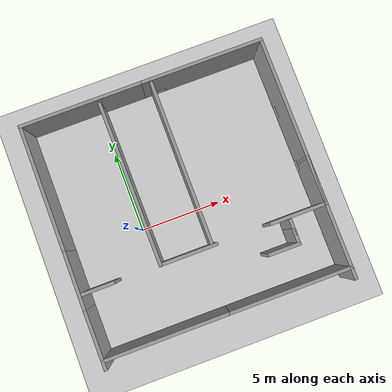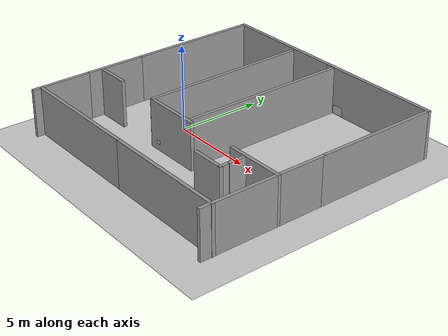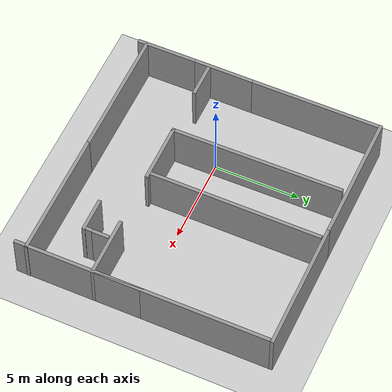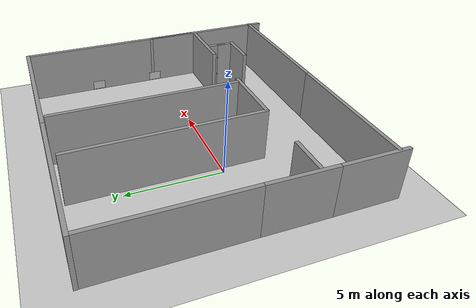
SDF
<sdf version="1.7">
 <world name="default">
  <light name="sun" type="directional">
   <pose>0 0 10 0 -0 0</pose>
   <diffuse>0.8 0.8 0.8 1</diffuse>
   <specular>0.2 0.2 0.2 1</specular>
   <attenuation>
    <range>1000</range>
    <constant>0.9</constant>
    <linear>0.01</linear>
    <quadratic>0.001</quadratic>
   </attenuation>
   <direction>-0.5 0.1 -0.9</direction>
   <spot><inner_angle>0</inner_angle><outer_angle>0</outer_angle><falloff>0</falloff></spot>
  </light>
  <model name="ground_plane">
   <static>1</static>
   <link name="link">
    <collision name="collision">
     <geometry><plane><normal>0 0 1</normal><size>100 100</size></plane></geometry>
     <surface>
      <contact><collide_bitmask>65535</collide_bitmask></contact>
      <friction><ode><mu>100</mu><mu2>50</mu2></ode></friction>
     </surface>
    </collision>
    <visual name="visual">
     <cast_shadows>0</cast_shadows>
     <geometry><plane><normal>0 0 1</normal><size>100 100</size></plane></geometry>
     <material>
      <script><uri>file://media/materials/scripts/gazebo.material</uri><name>Gazebo/Grey</name></script>
     </material>
    </visual>
   </link>
  </model>
  <gravity>0 0 -9.8</gravity>
  <magnetic_field>6e-06 2.3e-05 -4.2e-05</magnetic_field>
  <atmosphere type="adiabatic"/>
  <physics type="ode">
   <real_time_update_rate>1000</real_time_update_rate>
   <max_step_size>0.001</max_step_size>
   <real_time_factor>1</real_time_factor>
   <ode>
    <solver>
     <type>quick</type>
     <iters>150</iters>
     <precon_iters>0</precon_iters>
     <sor>1.4</sor>
     <use_dynamic_moi_rescaling>1</use_dynamic_moi_rescaling>
    </solver>
    <constraints>
     <cfm>1e-05</cfm>
     <erp>0.2</erp>
     <contact_max_correcting_vel>2000</contact_max_correcting_vel>
     <contact_surface_layer>0.01</contact_surface_layer>
    </constraints>
   </ode>
  </physics>
  <scene><ambient>0.4 0.4 0.4 1</ambient><background>0.7 0.7 0.7 1</background><shadows>1</shadows></scene>
  <audio><device>default</device></audio>
  <spherical_coordinates>
   <surface_model>EARTH_WGS84</surface_model>
   <latitude_deg>0</latitude_deg>
   <longitude_deg>0</longitude_deg>
   <elevation>0</elevation>
   <heading_deg>0</heading_deg>
  </spherical_coordinates>
  <model name="grey_wall_small">
   <static>1</static>
   <link name="link">
    <pose>0 0 1.4 0 -0 0</pose>
    <collision name="collision"><geometry><box><size>7.5 0.2 2.8</size></box></geometry></collision>
    <visual name="visual">
     <cast_shadows>0</cast_shadows>
     <geometry><box><size>7.5 0.2 2.8</size></box></geometry>
     <material>
      <script>
       <uri>model://grey_wall_small/materials/scripts</uri>
       <uri>model://grey_wall_small/materials/textures</uri>
       <name>vrc/grey_wall_small</name>
      </script>
     </material>
    </visual>
   </link>
   <pose>-0.724456 7.88128 0 0 -0 0</pose>
  </model>
  <model name="grey_wall_small_clone">
   <static>1</static>
   <link name="link">
    <pose>0 0 1.4 0 -0 0</pose>
    <collision name="collision"><geometry><box><size>7.5 0.2 2.8</size></box></geometry></collision>
    <visual name="visual">
     <cast_shadows>0</cast_shadows>
     <geometry><box><size>7.5 0.2 2.8</size></box></geometry>
     <material>
      <script>
       <uri>model://grey_wall_small/materials/scripts</uri>
       <uri>model://grey_wall_small/materials/textures</uri>
       <name>vrc/grey_wall_small</name>
      </script>
     </material>
    </visual>
   </link>
   <pose>6.77422 7.88164 0 0 -0 0</pose>
  </model>
  <model name="grey_wall_medium">
   <static>1</static>
   <link name="link">
    <pose>0 0 1.4 0 -0 0</pose>
    <collision name="collision"><geometry><box><size>10 0.2 2.8</size></box></geometry></collision>
    <visual name="visual">
     <cast_shadows>0</cast_shadows>
     <geometry><box><size>10 0.2 2.8</size></box></geometry>
     <material>
      <script>
       <uri>model://grey_wall_medium/materials/scripts</uri>
       <uri>model://grey_wall_medium/materials/textures</uri>
       <name>vrc/grey_wall_medium</name>
      </script>
     </material>
    </visual>
   </link>
   <pose>10.434 2.78025 0 0 0 -1.56842</pose>
  </model>
  <model name="grey_wall_medium_0">
   <static>1</static>
   <link name="link">
    <pose>0 0 1.4 0 -0 0</pose>
    <collision name="collision"><geometry><box><size>10 0.2 2.8</size></box></geometry></collision>
    <visual name="visual">
     <cast_shadows>0</cast_shadows>
     <geometry><box><size>10 0.2 2.8</size></box></geometry>
     <material>
      <script>
       <uri>model://grey_wall_medium/materials/scripts</uri>
       <uri>model://grey_wall_medium/materials/textures</uri>
       <name>vrc/grey_wall_medium</name>
      </script>
     </material>
    </visual>
   </link>
   <pose>3.57696 2.74324 0 0 0 -1.56961</pose>
  </model>
  <model name="grey_wall_smaller_0">
   <static>1</static>
   <link name="link">
    <pose>0 0 1.4 0 -0 0</pose>
    <collision name="collision"><geometry><box><size>3.5 0.2 2.8</size></box></geometry></collision>
    <visual name="visual">
     <cast_shadows>0</cast_shadows>
     <geometry><box><size>3.5 0.2 2.8</size></box></geometry>
     <material>
      <script>
       <uri>model://grey_wall_smaller/materials/scripts</uri>
       <uri>model://grey_wall_smaller/materials/textures</uri>
       <name>vrc/grey_wall_smaller</name>
      </script>
     </material>
    </visual>
   </link>
   <pose>2.16829 -2.31762 0 0 -0 0</pose>
  </model>
  <model name="grey_wall_smaller_1">
   <static>1</static>
   <link name="link">
    <pose>0 0 1.4 0 -0 0</pose>
    <collision name="collision"><geometry><box><size>3.5 0.2 2.8</size></box></geometry></collision>
    <visual name="visual">
     <cast_shadows>0</cast_shadows>
     <geometry><box><size>3.5 0.2 2.8</size></box></geometry>
     <material>
      <script>
       <uri>model://grey_wall_smaller/materials/scripts</uri>
       <uri>model://grey_wall_smaller/materials/textures</uri>
       <name>vrc/grey_wall_smaller</name>
      </script>
     </material>
    </visual>
   </link>
   <pose>8.79723 -2.31848 0 0 -0 0</pose>
  </model>
  <model name="grey_wall_small_0">
   <static>1</static>
   <link name="link">
    <pose>0 0 1.4 0 -0 0</pose>
    <collision name="collision"><geometry><box><size>7.5 0.2 2.8</size></box></geometry></collision>
    <visual name="visual">
     <cast_shadows>0</cast_shadows>
     <geometry><box><size>7.5 0.2 2.8</size></box></geometry>
     <material>
      <script>
       <uri>model://grey_wall_small/materials/scripts</uri>
       <uri>model://grey_wall_small/materials/textures</uri>
       <name>vrc/grey_wall_small</name>
      </script>
     </material>
    </visual>
   </link>
   <pose>-4.35791 4.03296 0 0 0 -1.56915</pose>
  </model>
  <model name="grey_wall_smaller_2">
   <static>1</static>
   <link name="link">
    <pose>0 0 1.4 0 -0 0</pose>
    <collision name="collision"><geometry><box><size>3.5 0.2 2.8</size></box></geometry></collision>
    <visual name="visual">
     <cast_shadows>0</cast_shadows>
     <geometry><box><size>3.5 0.2 2.8</size></box></geometry>
     <material>
      <script>
       <uri>model://grey_wall_smaller/materials/scripts</uri>
       <uri>model://grey_wall_smaller/materials/textures</uri>
       <name>vrc/grey_wall_smaller</name>
      </script>
     </material>
    </visual>
   </link>
   <pose>-4.35344 -1.46455 0 0 0 -1.57176</pose>
  </model>
  <model name="grey_wall_small_1">
   <static>1</static>
   <link name="link">
    <pose>0 0 1.4 0 -0 0</pose>
    <collision name="collision"><geometry><box><size>7.5 0.2 2.8</size></box></geometry></collision>
    <visual name="visual">
     <cast_shadows>0</cast_shadows>
     <geometry><box><size>7.5 0.2 2.8</size></box></geometry>
     <material>
      <script>
       <uri>model://grey_wall_small/materials/scripts</uri>
       <uri>model://grey_wall_small/materials/textures</uri>
       <name>vrc/grey_wall_small</name>
      </script>
     </material>
    </visual>
   </link>
   <pose>-0.588788 -6.16441 0 0 -0 0</pose>
  </model>
  <model name="grey_wall_smaller">
   <static>1</static>
   <link name="link">
    <pose>0 0 1.4 0 -0 0</pose>
    <collision name="collision"><geometry><box><size>3.5 0.2 2.8</size></box></geometry></collision>
    <visual name="visual">
     <cast_shadows>0</cast_shadows>
     <geometry><box><size>3.5 0.2 2.8</size></box></geometry>
     <material>
      <script>
       <uri>model://grey_wall_smaller/materials/scripts</uri>
       <uri>model://grey_wall_smaller/materials/textures</uri>
       <name>vrc/grey_wall_smaller</name>
      </script>
     </material>
    </visual>
   </link>
   <pose>-4.34263 -4.96152 0 0 -0 1.57757</pose>
  </model>
  <model name="grey_wall_small_2">
   <static>1</static>
   <link name="link">
    <pose>0 0 1.4 0 -0 0</pose>
    <collision name="collision"><geometry><box><size>7.5 0.2 2.8</size></box></geometry></collision>
    <visual name="visual">
     <cast_shadows>0</cast_shadows>
     <geometry><box><size>7.5 0.2 2.8</size></box></geometry>
     <material>
      <script>
       <uri>model://grey_wall_small/materials/scripts</uri>
       <uri>model://grey_wall_small/materials/textures</uri>
       <name>vrc/grey_wall_small</name>
      </script>
     </material>
    </visual>
   </link>
   <pose>6.82996 -6.16669 0 0 -0 0</pose>
  </model>
  <model name="grey_wall_small_3">
   <static>1</static>
   <link name="link">
    <pose>0 0 1.4 0 -0 0</pose>
    <collision name="collision"><geometry><box><size>7.5 0.2 2.8</size></box></geometry></collision>
    <visual name="visual">
     <cast_shadows>0</cast_shadows>
     <geometry><box><size>7.5 0.2 2.8</size></box></geometry>
     <material>
      <script>
       <uri>model://grey_wall_small/materials/scripts</uri>
       <uri>model://grey_wall_small/materials/textures</uri>
       <name>vrc/grey_wall_small</name>
      </script>
     </material>
    </visual>
   </link>
   <pose>10.4493 -3.15028 0 0 -0 1.57351</pose>
  </model>
  <model name="grey_wall_tiny">
   <static>1</static>
   <link name="link">
    <pose>0 0 1.4 0 -0 0</pose>
    <collision name="collision"><geometry><box><size>2 0.2 2.8</size></box></geometry></collision>
    <visual name="visual">
     <cast_shadows>0</cast_shadows>
     <geometry><box><size>2 0.2 2.8</size></box></geometry>
     <material>
      <script>
       <uri>model://grey_wall_tiny/materials/scripts</uri>
       <uri>model://grey_wall_tiny/materials/textures</uri>
       <name>vrc/grey_wall_tiny</name>
      </script>
     </material>
    </visual>
   </link>
   <pose>-3.2561 -2.32762 0 0 -0 0</pose>
  </model>
  <model name="red_image">
   <static>1</static>
   <link name="link">
    <visual name="visual">
     <pose>-6 -0.11 0.4 1.57 -0 0</pose>
     <cast_shadows>0</cast_shadows>
     <geometry><plane><normal>0 0 1</normal><size>0.279 0.21</size></plane></geometry>
     <material>
      <script>
       <uri>model://red_image/materials/scripts</uri>
       <uri>model://red_image/materials/textures</uri>
       <name>red_image/Image</name>
      </script>
     </material>
    </visual>
   </link>
   <pose>7.10097 -2.329 0.1 0 -0 0</pose>
  </model>
  <model name="green_image">
   <static>1</static>
   <link name="link">
    <visual name="visual">
     <pose>-6 -0.11 0.4 1.57 -0 0</pose>
     <cast_shadows>0</cast_shadows>
     <geometry><plane><normal>0 0 1</normal><size>0.279 0.21</size></plane></geometry>
     <material>
      <script>
       <uri>model://green_image/materials/scripts</uri>
       <uri>model://green_image/materials/textures</uri>
       <name>green_image/Image</name>
      </script>
     </material>
    </visual>
   </link>
   <pose>13.3991 -2.32966 0.1 0 -0 0</pose>
  </model>
  <light name="user_point_light_0" type="point">
   <pose>3.79344 -5.28695 1 0 -0 0</pose>
   <diffuse>0.5 0.5 0.5 1</diffuse>
   <specular>0.1 0.1 0.1 1</specular>
   <attenuation>
    <range>20</range>
    <constant>0.5</constant>
    <linear>0.01</linear>
    <quadratic>0.001</quadratic>
   </attenuation>
   <cast_shadows>0</cast_shadows>
   <direction>0 0 -1</direction>
   <spot><inner_angle>0</inner_angle><outer_angle>0</outer_angle><falloff>0</falloff></spot>
  </light>
  <model name="window1">
   <static>1</static>
   <link name="robot_link">
    <collision name="body_collision">
     <geometry><plane><size>0.707 0.5</size><normal>0 0 1</normal></plane></geometry>
    </collision>
    <visual name="body_visual">
     <cast_shadows>0</cast_shadows>
     <geometry><plane><size>0.707 0.5</size><normal>0 0 1</normal></plane></geometry>
     <material>
      <script>
       <uri>model://window1/materials/scripts/</uri>
       <uri>model://window1/materials/textures/</uri>
       <name>RepeatedTexture1</name>
      </script>
     </material>
    </visual>
   </link>
   <pose>4.046 7.7716 0.28 1.57 -0 0</pose>
  </model>
  <model name="window2">
   <static>1</static>
   <link name="robot_link">
    <collision name="body_collision">
     <geometry><plane><size>0.707 0.5</size><normal>0 0 1</normal></plane></geometry>
    </collision>
    <visual name="body_visual">
     <cast_shadows>0</cast_shadows>
     <geometry><plane><size>0.707 0.5</size><normal>0 0 1</normal></plane></geometry>
     <material>
      <script>
       <uri>model://window2/materials/scripts/</uri>
       <uri>model://window2/materials/textures/</uri>
       <name>RepeatedTexture2</name>
      </script>
     </material>
    </visual>
   </link>
   <pose>10.3333 0.407 0.28 1.57 0 -1.57</pose>
  </model>
  <model name="window3">
   <static>1</static>
   <link name="robot_link">
    <collision name="body_collision">
     <geometry><plane><size>0.707 0.5</size><normal>0 0 1</normal></plane></geometry>
    </collision>
    <visual name="body_visual">
     <cast_shadows>0</cast_shadows>
     <geometry><plane><size>0.707 0.5</size><normal>0 0 1</normal></plane></geometry>
     <material>
      <script>
       <uri>model://window3/materials/scripts/</uri>
       <uri>model://window3/materials/textures/</uri>
       <name>RepeatedTexture3</name>
      </script>
     </material>
    </visual>
   </link>
   <pose>10.33 4 0.28 1.57 0 -1.57</pose>
  </model>
  <model name="grey_wall_tiny_0">
   <static>1</static>
   <link name="link">
    <pose>0 0 1.4 0 -0 0</pose>
    <collision name="collision"><geometry><box><size>2 0.2 2.8</size></box></geometry></collision>
    <visual name="visual">
     <cast_shadows>0</cast_shadows>
     <geometry><box><size>2 0.2 2.8</size></box></geometry>
     <material>
      <script>
       <uri>model://grey_wall_tiny/materials/scripts</uri>
       <uri>model://grey_wall_tiny/materials/textures</uri>
       <name>vrc/grey_wall_tiny</name>
      </script>
     </material>
    </visual>
   </link>
   <pose>7.30405 -3.91818 0 0 -0 0</pose>
  </model>
  <model name="grey_wall_tiny_1">
   <static>1</static>
   <link name="link">
    <pose>0 0 1.4 0 -0 0</pose>
    <collision name="collision"><geometry><box><size>1 0.2 2.8</size></box></geometry></collision>
    <visual name="visual">
     <cast_shadows>0</cast_shadows>
     <geometry><box><size>1 0.2 2.8</size></box></geometry>
     <material>
      <script>
       <uri>model://grey_wall_tinier/materials/scripts</uri>
       <uri>model://grey_wall_tinier/materials/textures</uri>
       <name>vrc/grey_wall_tinier</name>
      </script>
     </material>
    </visual>
   </link>
   <pose>8.20328 -2.93771 -0 0 -0 1.56779</pose>
  </model>
  <model name="grey_wall_tiny_2">
   <static>1</static>
   <link name="link">
    <pose>0 0 1.4 0 -0 0</pose>
    <collision name="collision"><geometry><box><size>1 0.2 2.8</size></box></geometry></collision>
    <visual name="visual">
     <cast_shadows>0</cast_shadows>
     <geometry><box><size>1 0.2 2.8</size></box></geometry>
     <material>
      <script>
       <uri>model://grey_wall_tinier/materials/scripts</uri>
       <uri>model://grey_wall_tinier/materials/textures</uri>
       <name>vrc/grey_wall_tinier</name>
      </script>
     </material>
    </visual>
   </link>
   <pose>8.19014 -3.46913 0 0 0 -1.5739</pose>
  </model>
  <model name="grey_wall_medium_1">
   <static>1</static>
   <link name="link">
    <pose>0 0 1.4 0 -0 0</pose>
    <collision name="collision"><geometry><box><size>10 0.2 2.8</size></box></geometry></collision>
    <visual name="visual">
     <cast_shadows>0</cast_shadows>
     <geometry><box><size>10 0.2 2.8</size></box></geometry>
     <material>
      <script>
       <uri>model://grey_wall_medium/materials/scripts</uri>
       <uri>model://grey_wall_medium/materials/textures</uri>
       <name>vrc/grey_wall_medium</name>
      </script>
     </material>
    </visual>
   </link>
   <pose>0.416968 2.60962 0 0 0 -1.55994</pose>
  </model>
 </world>
</sdf>
